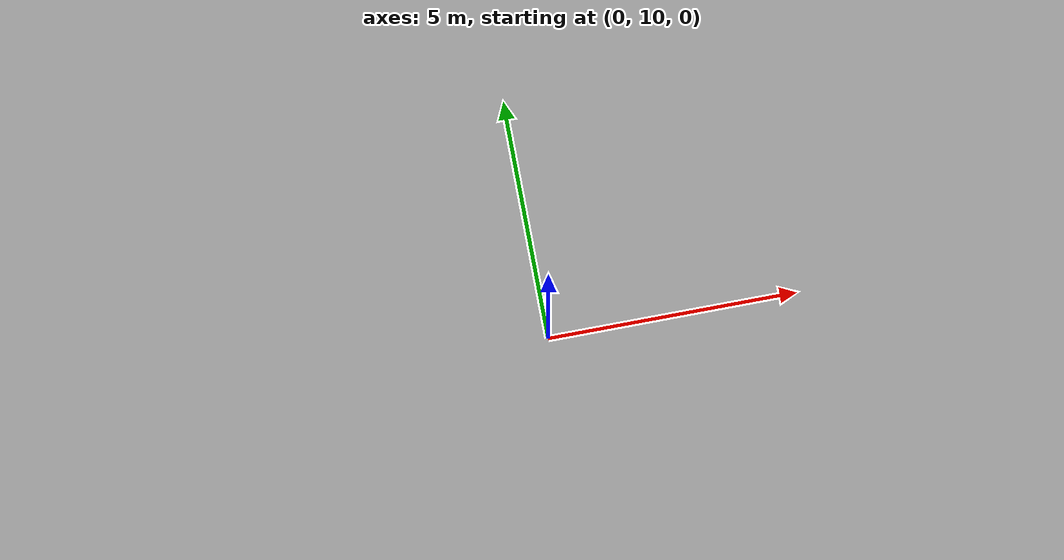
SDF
<?xml version="1.0"?>
<sdf version="1.6">
  <world name="world">

    <plugin name="gazebo_ros_state" filename="libgazebo_ros_state.so">
      <ros>
        <namespace>/Final</namespace>
        <argument>model_states:=model_states_demo</argument>
        <argument>link_states:=link_states_demo</argument>
      </ros>

      <update_rate>10.0</update_rate>
    </plugin>

  <include>
    <uri>model://ground_plane</uri>
  </include>
  <include>
    <uri>model://sun</uri>
  </include>

  <physics type='ode'>
    <max_step_size>0.001000</max_step_size>
    <real_time_factor>1.000000</real_time_factor>
    <real_time_update_rate>500</real_time_update_rate>
    <gravity>0.000000 0.000000 -9.800000</gravity>
  </physics>

    <model name='spawn area'>
        <pose>0.0 -15.0 0.01 0 0 0</pose>
        <static>1</static>
        <link name='goal_line'>
            <visual name='visual'>
                <cast_shadows>0</cast_shadows>
                <geometry>
                    <plane>
                      <normal>0 0 1</normal>
                      <size>10 5</size>
                    </plane>
                </geometry>
                <material>
                    <script>
                      <uri>file://media/materials/scripts/gazebo.material</uri>
                      <name>Gazebo/Blue</name>
                    </script>
                </material>
            </visual>
            <self_collide>0</self_collide>
            <kinematic>0</kinematic>
            <gravity>0</gravity>
        </link>
    </model>

    <model name='goal line'>
        <pose>0.0 10.0 0.01 0 0 0</pose>
        <static>1</static>
        <link name='goal_line'>
            <visual name='visual'>
                <cast_shadows>0</cast_shadows>
                <geometry>
                    <plane>
                      <normal>0 0 1</normal>
                      <size>20 0.05</size>
                    </plane>
                </geometry>
                <material>
                    <script>
                      <uri>file://media/materials/scripts/gazebo.material</uri>
                      <name>Gazebo/Red</name>
                    </script>
                </material>
            </visual>
            <self_collide>0</self_collide>
            <kinematic>0</kinematic>
            <gravity>0</gravity>
        </link>
    </model>

    <model name='ground_plane1'>
      <static>1</static>
      <link name='link'>
        <collision name='collision'>
          <geometry>
            <plane>
              <normal>0 0 1</normal>
              <size>100 100</size>
            </plane>
          </geometry>
          <surface>
            <friction>
              <ode>
                <mu>0</mu>
                <mu2>0</mu2>
              </ode>
              <torsional>
                <ode/>
              </torsional>
            </friction>
            <contact>
              <ode/>
            </contact>
            <bounce/>
          </surface>
          <max_contacts>10</max_contacts>
        </collision>
        <visual name='visual'>
          <cast_shadows>0</cast_shadows>
          <geometry>
            <plane>
              <normal>0 0 1</normal>
              <size>100 100</size>
            </plane>
          </geometry>
          <material>
            <script>
              <uri>file://media/materials/scripts/gazebo.material</uri>
              <name>Gazebo/Grey</name>
            </script>
          </material>
        </visual>
        <self_collide>0</self_collide>
        <kinematic>0</kinematic>
        <gravity>1</gravity>
      </link>
    </model>

  </world>
</sdf>
